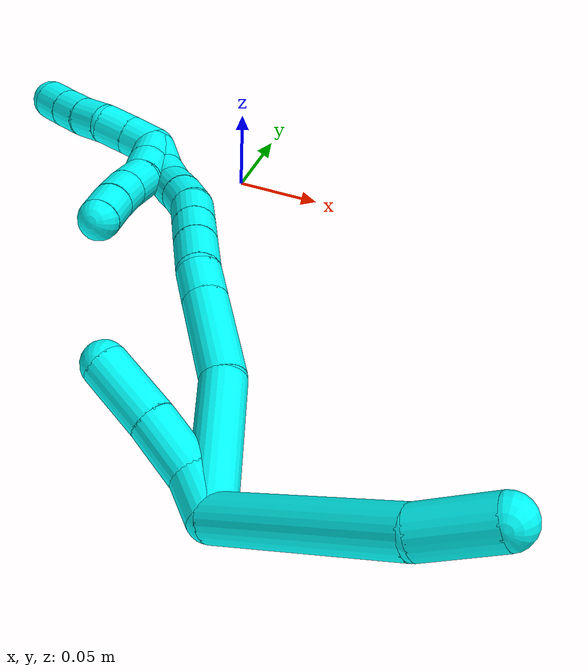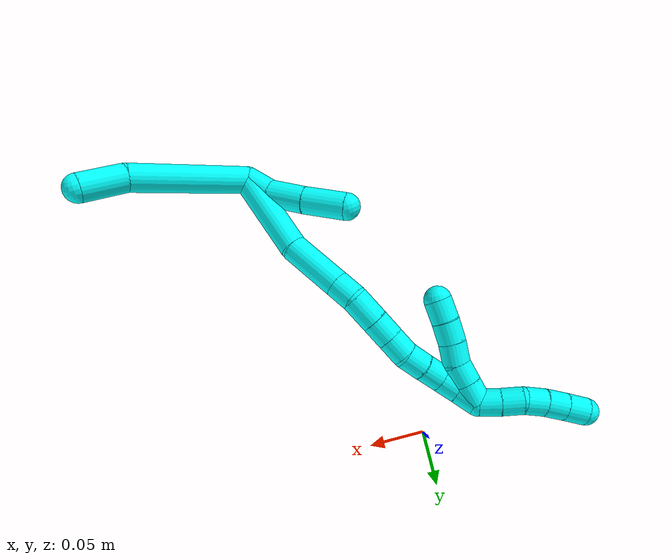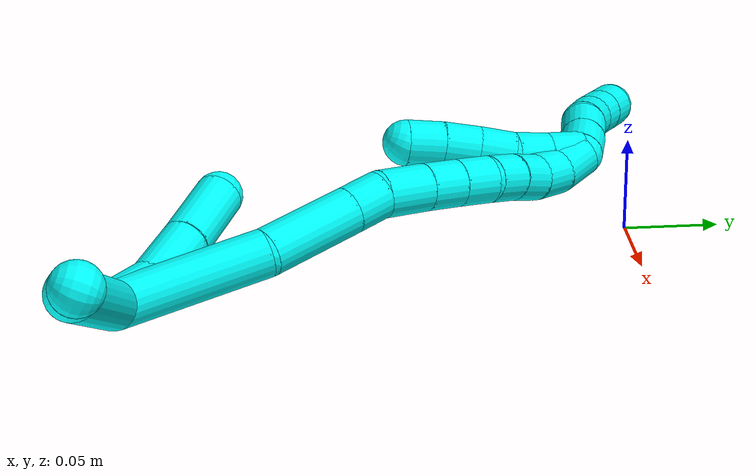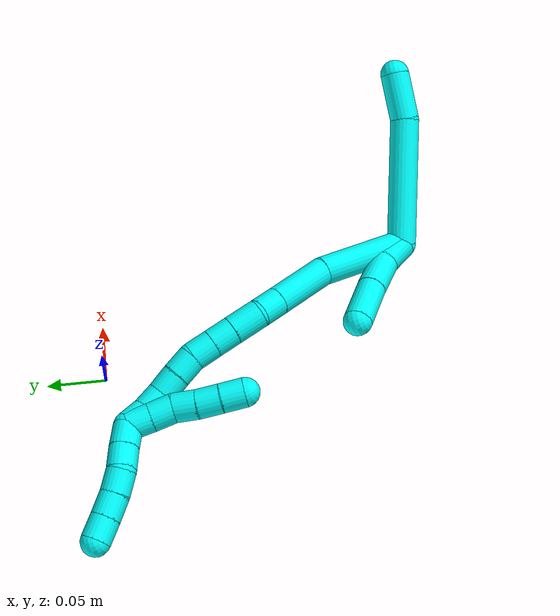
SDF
<sdf version="1.7">
 <world name="default">
  <model name="3">
   <static>0</static>
   <link name="3">
    <collision name="collision-cylinder-e_1_2_8">
     <pose>0.04837 0.017768 0.017767 -0.785415 1.0917 -0.492972</pose>
     <geometry><cylinder><radius>0.0125</radius><length>0.109014</length></cylinder></geometry>
     <surface>
      <friction><ode><mu>1.16</mu><mu2>1.16</mu2><slip1>0</slip1><slip2>0</slip2></ode></friction>
      <contact><ode><kp>1e+06</kp><kd>1</kd><max_vel>0</max_vel><min_depth>0.001</min_depth></ode></contact>
     </surface>
    </collision>
    <visual name="visual-cylinder-e_1_2_8">
     <pose>0.04837 0.017768 0.017767 -0.785415 1.0917 -0.492972</pose>
     <geometry><cylinder><radius>0.0125</radius><length>0.109014</length></cylinder></geometry>
     <material><ambient>0.003922 1 0.996078 1</ambient></material>
    </visual>
    <collision name="collision-cylinder-e_2_8_6">
     <pose>0.115172 0.044211 0.037759 -1.31972 1.11846 -0.90413</pose>
     <geometry><cylinder><radius>0.0125</radius><length>0.040986</length></cylinder></geometry>
     <surface>
      <friction><ode><mu>1.16</mu><mu2>1.16</mu2><slip1>0</slip1><slip2>0</slip2></ode></friction>
      <contact><ode><kp>1e+06</kp><kd>1</kd><max_vel>0</max_vel><min_depth>0.001</min_depth></ode></contact>
     </surface>
    </collision>
    <visual name="visual-cylinder-e_2_8_6">
     <pose>0.115172 0.044211 0.037759 -1.31972 1.11846 -0.90413</pose>
     <geometry><cylinder><radius>0.0125</radius><length>0.040986</length></cylinder></geometry>
     <material><ambient>0.003922 1 0.996078 1</ambient></material>
    </visual>
    <collision name="collision-cylinder-e_1_2_9">
     <pose>-0.008256 0.005606 -0.007774 -2.5168 -0.711059 1.70982</pose>
     <geometry><cylinder><radius>0.0125</radius><length>0.025301</length></cylinder></geometry>
     <surface>
      <friction><ode><mu>1.16</mu><mu2>1.16</mu2><slip1>0</slip1><slip2>0</slip2></ode></friction>
      <contact><ode><kp>1e+06</kp><kd>1</kd><max_vel>0</max_vel><min_depth>0.001</min_depth></ode></contact>
     </surface>
    </collision>
    <visual name="visual-cylinder-e_1_2_9">
     <pose>-0.008256 0.005606 -0.007774 -2.5168 -0.711059 1.70982</pose>
     <geometry><cylinder><radius>0.0125</radius><length>0.025301</length></cylinder></geometry>
     <material><ambient>0.003922 1 0.996078 1</ambient></material>
    </visual>
    <collision name="collision-cylinder-e_2_9_10">
     <pose>-0.030548 0.019531 -0.021478 -2.19017 -0.941652 1.55875</pose>
     <geometry><cylinder><radius>0.0125</radius><length>0.03472</length></cylinder></geometry>
     <surface>
      <friction><ode><mu>1.16</mu><mu2>1.16</mu2><slip1>0</slip1><slip2>0</slip2></ode></friction>
      <contact><ode><kp>1e+06</kp><kd>1</kd><max_vel>0</max_vel><min_depth>0.001</min_depth></ode></contact>
     </surface>
    </collision>
    <visual name="visual-cylinder-e_2_9_10">
     <pose>-0.030548 0.019531 -0.021478 -2.19017 -0.941652 1.55875</pose>
     <geometry><cylinder><radius>0.0125</radius><length>0.03472</length></cylinder></geometry>
     <material><ambient>0.003922 1 0.996078 1</ambient></material>
    </visual>
    <collision name="collision-cylinder-e_3_10_5">
     <pose>-0.061352 0.036792 -0.033608 -2.17694 -0.995134 1.60749</pose>
     <geometry><cylinder><radius>0.0125</radius><length>0.03998</length></cylinder></geometry>
     <surface>
      <friction><ode><mu>1.16</mu><mu2>1.16</mu2><slip1>0</slip1><slip2>0</slip2></ode></friction>
      <contact><ode><kp>1e+06</kp><kd>1</kd><max_vel>0</max_vel><min_depth>0.001</min_depth></ode></contact>
     </surface>
    </collision>
    <visual name="visual-cylinder-e_3_10_5">
     <pose>-0.061352 0.036792 -0.033608 -2.17694 -0.995134 1.60749</pose>
     <geometry><cylinder><radius>0.0125</radius><length>0.03998</length></cylinder></geometry>
     <material><ambient>0.003922 1 0.996078 1</ambient></material>
    </visual>
    <collision name="collision-cylinder-e_1_2_11">
     <pose>-0.011275 0.022174 -0.031072 -2.52178 -0.287197 0.848267</pose>
     <geometry><cylinder><radius>0.0125</radius><length>0.079606</length></cylinder></geometry>
     <surface>
      <friction><ode><mu>1.16</mu><mu2>1.16</mu2><slip1>0</slip1><slip2>0</slip2></ode></friction>
      <contact><ode><kp>1e+06</kp><kd>1</kd><max_vel>0</max_vel><min_depth>0.001</min_depth></ode></contact>
     </surface>
    </collision>
    <visual name="visual-cylinder-e_1_2_11">
     <pose>-0.011275 0.022174 -0.031072 -2.52178 -0.287197 0.848267</pose>
     <geometry><cylinder><radius>0.0125</radius><length>0.079606</length></cylinder></geometry>
     <material><ambient>0.003922 1 0.996078 1</ambient></material>
    </visual>
    <collision name="collision-cylinder-e_2_11_12">
     <pose>-0.036034 0.057958 -0.080031 -2.49115 -0.540383 1.37529</pose>
     <geometry><cylinder><radius>0.0125</radius><length>0.052422</length></cylinder></geometry>
     <surface>
      <friction><ode><mu>1.16</mu><mu2>1.16</mu2><slip1>0</slip1><slip2>0</slip2></ode></friction>
      <contact><ode><kp>1e+06</kp><kd>1</kd><max_vel>0</max_vel><min_depth>0.001</min_depth></ode></contact>
     </surface>
    </collision>
    <visual name="visual-cylinder-e_2_11_12">
     <pose>-0.036034 0.057958 -0.080031 -2.49115 -0.540383 1.37529</pose>
     <geometry><cylinder><radius>0.0125</radius><length>0.052422</length></cylinder></geometry>
     <material><ambient>0.003922 1 0.996078 1</ambient></material>
    </visual>
    <collision name="collision-cylinder-e_3_12_13">
     <pose>-0.054816 0.077042 -0.104946 -2.47986 -0.536448 1.34966</pose>
     <geometry><cylinder><radius>0.0125</radius><length>0.020728</length></cylinder></geometry>
     <surface>
      <friction><ode><mu>1.16</mu><mu2>1.16</mu2><slip1>0</slip1><slip2>0</slip2></ode></friction>
      <contact><ode><kp>1e+06</kp><kd>1</kd><max_vel>0</max_vel><min_depth>0.001</min_depth></ode></contact>
     </surface>
    </collision>
    <visual name="visual-cylinder-e_3_12_13">
     <pose>-0.054816 0.077042 -0.104946 -2.47986 -0.536448 1.34966</pose>
     <geometry><cylinder><radius>0.0125</radius><length>0.020728</length></cylinder></geometry>
     <material><ambient>0.003922 1 0.996078 1</ambient></material>
    </visual>
    <collision name="collision-cylinder-e_4_13_14">
     <pose>-0.065962 0.086897 -0.123339 -2.77367 -0.447737 1.7713</pose>
     <geometry><cylinder><radius>0.0125</radius><length>0.027023</length></cylinder></geometry>
     <surface>
      <friction><ode><mu>1.16</mu><mu2>1.16</mu2><slip1>0</slip1><slip2>0</slip2></ode></friction>
      <contact><ode><kp>1e+06</kp><kd>1</kd><max_vel>0</max_vel><min_depth>0.001</min_depth></ode></contact>
     </surface>
    </collision>
    <visual name="visual-cylinder-e_4_13_14">
     <pose>-0.065962 0.086897 -0.123339 -2.77367 -0.447737 1.7713</pose>
     <geometry><cylinder><radius>0.0125</radius><length>0.027023</length></cylinder></geometry>
     <material><ambient>0.003922 1 0.996078 1</ambient></material>
    </visual>
    <collision name="collision-cylinder-e_5_14_15">
     <pose>-0.076124 0.094326 -0.143299 -2.80076 -0.441677 1.8336</pose>
     <geometry><cylinder><radius>0.0125</radius><length>0.020177</length></cylinder></geometry>
     <surface>
      <friction><ode><mu>1.16</mu><mu2>1.16</mu2><slip1>0</slip1><slip2>0</slip2></ode></friction>
      <contact><ode><kp>1e+06</kp><kd>1</kd><max_vel>0</max_vel><min_depth>0.001</min_depth></ode></contact>
     </surface>
    </collision>
    <visual name="visual-cylinder-e_5_14_15">
     <pose>-0.076124 0.094326 -0.143299 -2.80076 -0.441677 1.8336</pose>
     <geometry><cylinder><radius>0.0125</radius><length>0.020177</length></cylinder></geometry>
     <material><ambient>0.003922 1 0.996078 1</ambient></material>
    </visual>
    <collision name="collision-cylinder-e_6_15_16">
     <pose>-0.084741 0.100284 -0.160457 -2.8141 -0.444263 1.87841</pose>
     <geometry><cylinder><radius>0.0125</radius><length>0.020031</length></cylinder></geometry>
     <surface>
      <friction><ode><mu>1.16</mu><mu2>1.16</mu2><slip1>0</slip1><slip2>0</slip2></ode></friction>
      <contact><ode><kp>1e+06</kp><kd>1</kd><max_vel>0</max_vel><min_depth>0.001</min_depth></ode></contact>
     </surface>
    </collision>
    <visual name="visual-cylinder-e_6_15_16">
     <pose>-0.084741 0.100284 -0.160457 -2.8141 -0.444263 1.87841</pose>
     <geometry><cylinder><radius>0.0125</radius><length>0.020031</length></cylinder></geometry>
     <material><ambient>0.003922 1 0.996078 1</ambient></material>
    </visual>
    <collision name="collision-cylinder-e_7_16_17">
     <pose>-0.095296 0.104541 -0.176711 -2.96802 -0.675021 2.65557</pose>
     <geometry><cylinder><radius>0.0125</radius><length>0.020004</length></cylinder></geometry>
     <surface>
      <friction><ode><mu>1.16</mu><mu2>1.16</mu2><slip1>0</slip1><slip2>0</slip2></ode></friction>
      <contact><ode><kp>1e+06</kp><kd>1</kd><max_vel>0</max_vel><min_depth>0.001</min_depth></ode></contact>
     </surface>
    </collision>
    <visual name="visual-cylinder-e_7_16_17">
     <pose>-0.095296 0.104541 -0.176711 -2.96802 -0.675021 2.65557</pose>
     <geometry><cylinder><radius>0.0125</radius><length>0.020004</length></cylinder></geometry>
     <material><ambient>0.003922 1 0.996078 1</ambient></material>
    </visual>
    <collision name="collision-cylinder-e_8_17_18">
     <pose>-0.107919 0.106466 -0.192087 -3.0668 -0.690883 2.9344</pose>
     <geometry><cylinder><radius>0.0125</radius><length>0.02</length></cylinder></geometry>
     <surface>
      <friction><ode><mu>1.16</mu><mu2>1.16</mu2><slip1>0</slip1><slip2>0</slip2></ode></friction>
      <contact><ode><kp>1e+06</kp><kd>1</kd><max_vel>0</max_vel><min_depth>0.001</min_depth></ode></contact>
     </surface>
    </collision>
    <visual name="visual-cylinder-e_8_17_18">
     <pose>-0.107919 0.106466 -0.192087 -3.0668 -0.690883 2.9344</pose>
     <geometry><cylinder><radius>0.0125</radius><length>0.02</length></cylinder></geometry>
     <material><ambient>0.003922 1 0.996078 1</ambient></material>
    </visual>
    <collision name="collision-cylinder-e_9_18_19">
     <pose>-0.120767 0.109474 -0.206997 -2.81683 -0.704237 2.30277</pose>
     <geometry><cylinder><radius>0.0125</radius><length>0.020005</length></cylinder></geometry>
     <surface>
      <friction><ode><mu>1.16</mu><mu2>1.16</mu2><slip1>0</slip1><slip2>0</slip2></ode></friction>
      <contact><ode><kp>1e+06</kp><kd>1</kd><max_vel>0</max_vel><min_depth>0.001</min_depth></ode></contact>
     </surface>
    </collision>
    <visual name="visual-cylinder-e_9_18_19">
     <pose>-0.120767 0.109474 -0.206997 -2.81683 -0.704237 2.30277</pose>
     <geometry><cylinder><radius>0.0125</radius><length>0.020005</length></cylinder></geometry>
     <material><ambient>0.003922 1 0.996078 1</ambient></material>
    </visual>
    <collision name="collision-cylinder-e_10_19_1">
     <pose>-0.133221 0.117381 -0.22008 -2.39011 -0.640663 1.39848</pose>
     <geometry><cylinder><radius>0.0125</radius><length>0.020004</length></cylinder></geometry>
     <surface>
      <friction><ode><mu>1.16</mu><mu2>1.16</mu2><slip1>0</slip1><slip2>0</slip2></ode></friction>
      <contact><ode><kp>1e+06</kp><kd>1</kd><max_vel>0</max_vel><min_depth>0.001</min_depth></ode></contact>
     </surface>
    </collision>
    <visual name="visual-cylinder-e_10_19_1">
     <pose>-0.133221 0.117381 -0.22008 -2.39011 -0.640663 1.39848</pose>
     <geometry><cylinder><radius>0.0125</radius><length>0.020004</length></cylinder></geometry>
     <material><ambient>0.003922 1 0.996078 1</ambient></material>
    </visual>
    <collision name="collision-cylinder-e_1_1_20">
     <pose>-0.148751 0.124932 -0.228054 -2.36529 -1.26995 2.12827</pose>
     <geometry><cylinder><radius>0.0125</radius><length>0.02</length></cylinder></geometry>
     <surface>
      <friction><ode><mu>1.16</mu><mu2>1.16</mu2><slip1>0</slip1><slip2>0</slip2></ode></friction>
      <contact><ode><kp>1e+06</kp><kd>1</kd><max_vel>0</max_vel><min_depth>0.001</min_depth></ode></contact>
     </surface>
    </collision>
    <visual name="visual-cylinder-e_1_1_20">
     <pose>-0.148751 0.124932 -0.228054 -2.36529 -1.26995 2.12827</pose>
     <geometry><cylinder><radius>0.0125</radius><length>0.02</length></cylinder></geometry>
     <material><ambient>0.003922 1 0.996078 1</ambient></material>
    </visual>
    <collision name="collision-cylinder-e_2_20_21">
     <pose>-0.16799 0.129033 -0.231596 -2.18495 -1.32035 1.96401</pose>
     <geometry><cylinder><radius>0.0125</radius><length>0.02</length></cylinder></geometry>
     <surface>
      <friction><ode><mu>1.16</mu><mu2>1.16</mu2><slip1>0</slip1><slip2>0</slip2></ode></friction>
      <contact><ode><kp>1e+06</kp><kd>1</kd><max_vel>0</max_vel><min_depth>0.001</min_depth></ode></contact>
     </surface>
    </collision>
    <visual name="visual-cylinder-e_2_20_21">
     <pose>-0.16799 0.129033 -0.231596 -2.18495 -1.32035 1.96401</pose>
     <geometry><cylinder><radius>0.0125</radius><length>0.02</length></cylinder></geometry>
     <material><ambient>0.003922 1 0.996078 1</ambient></material>
    </visual>
    <collision name="collision-cylinder-e_3_21_22">
     <pose>-0.186818 0.1313 -0.237074 -3.08204 -1.15308 3.05004</pose>
     <geometry><cylinder><radius>0.0125</radius><length>0.02</length></cylinder></geometry>
     <surface>
      <friction><ode><mu>1.16</mu><mu2>1.16</mu2><slip1>0</slip1><slip2>0</slip2></ode></friction>
      <contact><ode><kp>1e+06</kp><kd>1</kd><max_vel>0</max_vel><min_depth>0.001</min_depth></ode></contact>
     </surface>
    </collision>
    <visual name="visual-cylinder-e_3_21_22">
     <pose>-0.186818 0.1313 -0.237074 -3.08204 -1.15308 3.05004</pose>
     <geometry><cylinder><radius>0.0125</radius><length>0.02</length></cylinder></geometry>
     <material><ambient>0.003922 1 0.996078 1</ambient></material>
    </visual>
    <collision name="collision-cylinder-e_4_22_23">
     <pose>-0.204638 0.132413 -0.246012 -2.96521 -1.05116 2.83902</pose>
     <geometry><cylinder><radius>0.0125</radius><length>0.02</length></cylinder></geometry>
     <surface>
      <friction><ode><mu>1.16</mu><mu2>1.16</mu2><slip1>0</slip1><slip2>0</slip2></ode></friction>
      <contact><ode><kp>1e+06</kp><kd>1</kd><max_vel>0</max_vel><min_depth>0.001</min_depth></ode></contact>
     </surface>
    </collision>
    <visual name="visual-cylinder-e_4_22_23">
     <pose>-0.204638 0.132413 -0.246012 -2.96521 -1.05116 2.83902</pose>
     <geometry><cylinder><radius>0.0125</radius><length>0.02</length></cylinder></geometry>
     <material><ambient>0.003922 1 0.996078 1</ambient></material>
    </visual>
    <collision name="collision-cylinder-e_5_23_4">
     <pose>-0.221919 0.134398 -0.255879 -2.92145 -1.03548 2.75827</pose>
     <geometry><cylinder><radius>0.0125</radius><length>0.02</length></cylinder></geometry>
     <surface>
      <friction><ode><mu>1.16</mu><mu2>1.16</mu2><slip1>0</slip1><slip2>0</slip2></ode></friction>
      <contact><ode><kp>1e+06</kp><kd>1</kd><max_vel>0</max_vel><min_depth>0.001</min_depth></ode></contact>
     </surface>
    </collision>
    <visual name="visual-cylinder-e_5_23_4">
     <pose>-0.221919 0.134398 -0.255879 -2.92145 -1.03548 2.75827</pose>
     <geometry><cylinder><radius>0.0125</radius><length>0.02</length></cylinder></geometry>
     <material><ambient>0.003922 1 0.996078 1</ambient></material>
    </visual>
    <collision name="collision-cylinder-e_1_1_24">
     <pose>-0.137114 0.119401 -0.21679 0.361009 0.210122 0.038482</pose>
     <geometry><cylinder><radius>0.0125</radius><length>0.02</length></cylinder></geometry>
     <surface>
      <friction><ode><mu>1.16</mu><mu2>1.16</mu2><slip1>0</slip1><slip2>0</slip2></ode></friction>
      <contact><ode><kp>1e+06</kp><kd>1</kd><max_vel>0</max_vel><min_depth>0.001</min_depth></ode></contact>
     </surface>
    </collision>
    <visual name="visual-cylinder-e_1_1_24">
     <pose>-0.137114 0.119401 -0.21679 0.361009 0.210122 0.038482</pose>
     <geometry><cylinder><radius>0.0125</radius><length>0.02</length></cylinder></geometry>
     <material><ambient>0.003922 1 0.996078 1</ambient></material>
    </visual>
    <collision name="collision-cylinder-e_2_24_25">
     <pose>-0.132845 0.113054 -0.19832 0.300961 0.220123 0.033509</pose>
     <geometry><cylinder><radius>0.0125</radius><length>0.02</length></cylinder></geometry>
     <surface>
      <friction><ode><mu>1.16</mu><mu2>1.16</mu2><slip1>0</slip1><slip2>0</slip2></ode></friction>
      <contact><ode><kp>1e+06</kp><kd>1</kd><max_vel>0</max_vel><min_depth>0.001</min_depth></ode></contact>
     </surface>
    </collision>
    <visual name="visual-cylinder-e_2_24_25">
     <pose>-0.132845 0.113054 -0.19832 0.300961 0.220123 0.033509</pose>
     <geometry><cylinder><radius>0.0125</radius><length>0.02</length></cylinder></geometry>
     <material><ambient>0.003922 1 0.996078 1</ambient></material>
    </visual>
    <collision name="collision-cylinder-e_3_25_26">
     <pose>-0.131279 0.107843 -0.179292 0.234369 -0.06181 -0.007279</pose>
     <geometry><cylinder><radius>0.0125</radius><length>0.02</length></cylinder></geometry>
     <surface>
      <friction><ode><mu>1.16</mu><mu2>1.16</mu2><slip1>0</slip1><slip2>0</slip2></ode></friction>
      <contact><ode><kp>1e+06</kp><kd>1</kd><max_vel>0</max_vel><min_depth>0.001</min_depth></ode></contact>
     </surface>
    </collision>
    <visual name="visual-cylinder-e_3_25_26">
     <pose>-0.131279 0.107843 -0.179292 0.234369 -0.06181 -0.007279</pose>
     <geometry><cylinder><radius>0.0125</radius><length>0.02</length></cylinder></geometry>
     <material><ambient>0.003922 1 0.996078 1</ambient></material>
    </visual>
    <collision name="collision-cylinder-e_4_26_27">
     <pose>-0.131505 0.103149 -0.159878 0.24007 0.039242 0.004734</pose>
     <geometry><cylinder><radius>0.0125</radius><length>0.02</length></cylinder></geometry>
     <surface>
      <friction><ode><mu>1.16</mu><mu2>1.16</mu2><slip1>0</slip1><slip2>0</slip2></ode></friction>
      <contact><ode><kp>1e+06</kp><kd>1</kd><max_vel>0</max_vel><min_depth>0.001</min_depth></ode></contact>
     </surface>
    </collision>
    <visual name="visual-cylinder-e_4_26_27">
     <pose>-0.131505 0.103149 -0.159878 0.24007 0.039242 0.004734</pose>
     <geometry><cylinder><radius>0.0125</radius><length>0.02</length></cylinder></geometry>
     <material><ambient>0.003922 1 0.996078 1</ambient></material>
    </visual>
    <collision name="collision-cylinder-e_5_27_3">
     <pose>-0.130386 0.097737 -0.140672 0.309321 0.07271 0.011341</pose>
     <geometry><cylinder><radius>0.0125</radius><length>0.02</length></cylinder></geometry>
     <surface>
      <friction><ode><mu>1.16</mu><mu2>1.16</mu2><slip1>0</slip1><slip2>0</slip2></ode></friction>
      <contact><ode><kp>1e+06</kp><kd>1</kd><max_vel>0</max_vel><min_depth>0.001</min_depth></ode></contact>
     </surface>
    </collision>
    <visual name="visual-cylinder-e_5_27_3">
     <pose>-0.130386 0.097737 -0.140672 0.309321 0.07271 0.011341</pose>
     <geometry><cylinder><radius>0.0125</radius><length>0.02</length></cylinder></geometry>
     <material><ambient>0.003922 1 0.996078 1</ambient></material>
    </visual>
    <collision name="collision-sphere-3">
     <pose>-0.129659 0.094701 -0.131172 0 -0 0</pose>
     <geometry><sphere><radius>0.0125</radius></sphere></geometry>
     <surface>
      <friction><ode><mu>1.16</mu><mu2>1.16</mu2><slip1>0</slip1><slip2>0</slip2></ode></friction>
      <contact><ode><kp>1e+06</kp><kd>1</kd><max_vel>0</max_vel><min_depth>0.001</min_depth></ode></contact>
     </surface>
    </collision>
    <visual name="visual-sphere-3">
     <pose>-0.129659 0.094701 -0.131172 0 -0 0</pose>
     <geometry><sphere><radius>0.0125</radius></sphere></geometry>
     <material><ambient>0.003922 1 0.996078 1</ambient></material>
    </visual>
    <collision name="collision-sphere-27">
     <pose>-0.131112 0.100773 -0.150173 0 -0 0</pose>
     <geometry><sphere><radius>0.0125</radius></sphere></geometry>
     <surface>
      <friction><ode><mu>1.16</mu><mu2>1.16</mu2><slip1>0</slip1><slip2>0</slip2></ode></friction>
      <contact><ode><kp>1e+06</kp><kd>1</kd><max_vel>0</max_vel><min_depth>0.001</min_depth></ode></contact>
     </surface>
    </collision>
    <visual name="visual-sphere-27">
     <pose>-0.131112 0.100773 -0.150173 0 -0 0</pose>
     <geometry><sphere><radius>0.0125</radius></sphere></geometry>
     <material><ambient>0.003922 1 0.996078 1</ambient></material>
    </visual>
    <collision name="collision-sphere-26">
     <pose>-0.131897 0.105525 -0.169584 0 -0 0</pose>
     <geometry><sphere><radius>0.0125</radius></sphere></geometry>
     <surface>
      <friction><ode><mu>1.16</mu><mu2>1.16</mu2><slip1>0</slip1><slip2>0</slip2></ode></friction>
      <contact><ode><kp>1e+06</kp><kd>1</kd><max_vel>0</max_vel><min_depth>0.001</min_depth></ode></contact>
     </surface>
    </collision>
    <visual name="visual-sphere-26">
     <pose>-0.131897 0.105525 -0.169584 0 -0 0</pose>
     <geometry><sphere><radius>0.0125</radius></sphere></geometry>
     <material><ambient>0.003922 1 0.996078 1</ambient></material>
    </visual>
    <collision name="collision-sphere-25">
     <pose>-0.130661 0.110161 -0.189 0 -0 0</pose>
     <geometry><sphere><radius>0.0125</radius></sphere></geometry>
     <surface>
      <friction><ode><mu>1.16</mu><mu2>1.16</mu2><slip1>0</slip1><slip2>0</slip2></ode></friction>
      <contact><ode><kp>1e+06</kp><kd>1</kd><max_vel>0</max_vel><min_depth>0.001</min_depth></ode></contact>
     </surface>
    </collision>
    <visual name="visual-sphere-25">
     <pose>-0.130661 0.110161 -0.189 0 -0 0</pose>
     <geometry><sphere><radius>0.0125</radius></sphere></geometry>
     <material><ambient>0.003922 1 0.996078 1</ambient></material>
    </visual>
    <collision name="collision-sphere-24">
     <pose>-0.135028 0.115947 -0.20764 0 -0 0</pose>
     <geometry><sphere><radius>0.0125</radius></sphere></geometry>
     <surface>
      <friction><ode><mu>1.16</mu><mu2>1.16</mu2><slip1>0</slip1><slip2>0</slip2></ode></friction>
      <contact><ode><kp>1e+06</kp><kd>1</kd><max_vel>0</max_vel><min_depth>0.001</min_depth></ode></contact>
     </surface>
    </collision>
    <visual name="visual-sphere-24">
     <pose>-0.135028 0.115947 -0.20764 0 -0 0</pose>
     <geometry><sphere><radius>0.0125</radius></sphere></geometry>
     <material><ambient>0.003922 1 0.996078 1</ambient></material>
    </visual>
    <collision name="collision-sphere-4">
     <pose>-0.23052 0.135512 -0.260857 0 -0 0</pose>
     <geometry><sphere><radius>0.0125</radius></sphere></geometry>
     <surface>
      <friction><ode><mu>1.16</mu><mu2>1.16</mu2><slip1>0</slip1><slip2>0</slip2></ode></friction>
      <contact><ode><kp>1e+06</kp><kd>1</kd><max_vel>0</max_vel><min_depth>0.001</min_depth></ode></contact>
     </surface>
    </collision>
    <visual name="visual-sphere-4">
     <pose>-0.23052 0.135512 -0.260857 0 -0 0</pose>
     <geometry><sphere><radius>0.0125</radius></sphere></geometry>
     <material><ambient>0.003922 1 0.996078 1</ambient></material>
    </visual>
    <collision name="collision-sphere-23">
     <pose>-0.213318 0.133284 -0.250901 0 -0 0</pose>
     <geometry><sphere><radius>0.0125</radius></sphere></geometry>
     <surface>
      <friction><ode><mu>1.16</mu><mu2>1.16</mu2><slip1>0</slip1><slip2>0</slip2></ode></friction>
      <contact><ode><kp>1e+06</kp><kd>1</kd><max_vel>0</max_vel><min_depth>0.001</min_depth></ode></contact>
     </surface>
    </collision>
    <visual name="visual-sphere-23">
     <pose>-0.213318 0.133284 -0.250901 0 -0 0</pose>
     <geometry><sphere><radius>0.0125</radius></sphere></geometry>
     <material><ambient>0.003922 1 0.996078 1</ambient></material>
    </visual>
    <collision name="collision-sphere-22">
     <pose>-0.195958 0.131542 -0.241124 0 -0 0</pose>
     <geometry><sphere><radius>0.0125</radius></sphere></geometry>
     <surface>
      <friction><ode><mu>1.16</mu><mu2>1.16</mu2><slip1>0</slip1><slip2>0</slip2></ode></friction>
      <contact><ode><kp>1e+06</kp><kd>1</kd><max_vel>0</max_vel><min_depth>0.001</min_depth></ode></contact>
     </surface>
    </collision>
    <visual name="visual-sphere-22">
     <pose>-0.195958 0.131542 -0.241124 0 -0 0</pose>
     <geometry><sphere><radius>0.0125</radius></sphere></geometry>
     <material><ambient>0.003922 1 0.996078 1</ambient></material>
    </visual>
    <collision name="collision-sphere-21">
     <pose>-0.177678 0.131059 -0.233025 0 -0 0</pose>
     <geometry><sphere><radius>0.0125</radius></sphere></geometry>
     <surface>
      <friction><ode><mu>1.16</mu><mu2>1.16</mu2><slip1>0</slip1><slip2>0</slip2></ode></friction>
      <contact><ode><kp>1e+06</kp><kd>1</kd><max_vel>0</max_vel><min_depth>0.001</min_depth></ode></contact>
     </surface>
    </collision>
    <visual name="visual-sphere-21">
     <pose>-0.177678 0.131059 -0.233025 0 -0 0</pose>
     <geometry><sphere><radius>0.0125</radius></sphere></geometry>
     <material><ambient>0.003922 1 0.996078 1</ambient></material>
    </visual>
    <collision name="collision-sphere-20">
     <pose>-0.158302 0.127008 -0.230168 0 -0 0</pose>
     <geometry><sphere><radius>0.0125</radius></sphere></geometry>
     <surface>
      <friction><ode><mu>1.16</mu><mu2>1.16</mu2><slip1>0</slip1><slip2>0</slip2></ode></friction>
      <contact><ode><kp>1e+06</kp><kd>1</kd><max_vel>0</max_vel><min_depth>0.001</min_depth></ode></contact>
     </surface>
    </collision>
    <visual name="visual-sphere-20">
     <pose>-0.158302 0.127008 -0.230168 0 -0 0</pose>
     <geometry><sphere><radius>0.0125</radius></sphere></geometry>
     <material><ambient>0.003922 1 0.996078 1</ambient></material>
    </visual>
    <collision name="collision-sphere-5">
     <pose>-0.07812 0.045736 -0.039808 0 -0 0</pose>
     <geometry><sphere><radius>0.0125</radius></sphere></geometry>
     <surface>
      <friction><ode><mu>1.16</mu><mu2>1.16</mu2><slip1>0</slip1><slip2>0</slip2></ode></friction>
      <contact><ode><kp>1e+06</kp><kd>1</kd><max_vel>0</max_vel><min_depth>0.001</min_depth></ode></contact>
     </surface>
    </collision>
    <visual name="visual-sphere-5">
     <pose>-0.07812 0.045736 -0.039808 0 -0 0</pose>
     <geometry><sphere><radius>0.0125</radius></sphere></geometry>
     <material><ambient>0.003922 1 0.996078 1</ambient></material>
    </visual>
    <collision name="collision-sphere-10">
     <pose>-0.044584 0.027848 -0.027409 0 -0 0</pose>
     <geometry><sphere><radius>0.0125</radius></sphere></geometry>
     <surface>
      <friction><ode><mu>1.16</mu><mu2>1.16</mu2><slip1>0</slip1><slip2>0</slip2></ode></friction>
      <contact><ode><kp>1e+06</kp><kd>1</kd><max_vel>0</max_vel><min_depth>0.001</min_depth></ode></contact>
     </surface>
    </collision>
    <visual name="visual-sphere-10">
     <pose>-0.044584 0.027848 -0.027409 0 -0 0</pose>
     <geometry><sphere><radius>0.0125</radius></sphere></geometry>
     <material><ambient>0.003922 1 0.996078 1</ambient></material>
    </visual>
    <collision name="collision-sphere-6">
     <pose>0.133604 0.052887 0.039984 0 -0 0</pose>
     <geometry><sphere><radius>0.0125</radius></sphere></geometry>
     <surface>
      <friction><ode><mu>1.16</mu><mu2>1.16</mu2><slip1>0</slip1><slip2>0</slip2></ode></friction>
      <contact><ode><kp>1e+06</kp><kd>1</kd><max_vel>0</max_vel><min_depth>0.001</min_depth></ode></contact>
     </surface>
    </collision>
    <visual name="visual-sphere-6">
     <pose>0.133604 0.052887 0.039984 0 -0 0</pose>
     <geometry><sphere><radius>0.0125</radius></sphere></geometry>
     <material><ambient>0.003922 1 0.996078 1</ambient></material>
    </visual>
    <collision name="collision-sphere-9">
     <pose>-0.016512 0.011213 -0.015548 0 -0 0</pose>
     <geometry><sphere><radius>0.0125</radius></sphere></geometry>
     <surface>
      <friction><ode><mu>1.16</mu><mu2>1.16</mu2><slip1>0</slip1><slip2>0</slip2></ode></friction>
      <contact><ode><kp>1e+06</kp><kd>1</kd><max_vel>0</max_vel><min_depth>0.001</min_depth></ode></contact>
     </surface>
    </collision>
    <visual name="visual-sphere-9">
     <pose>-0.016512 0.011213 -0.015548 0 -0 0</pose>
     <geometry><sphere><radius>0.0125</radius></sphere></geometry>
     <material><ambient>0.003922 1 0.996078 1</ambient></material>
    </visual>
    <collision name="collision-sphere-2">
     <geometry><sphere><radius>0.0125</radius></sphere></geometry>
     <surface>
      <friction><ode><mu>1.16</mu><mu2>1.16</mu2><slip1>0</slip1><slip2>0</slip2></ode></friction>
      <contact><ode><kp>1e+06</kp><kd>1</kd><max_vel>0</max_vel><min_depth>0.001</min_depth></ode></contact>
     </surface>
    </collision>
    <visual name="visual-sphere-2">
     <geometry><sphere><radius>0.0125</radius></sphere></geometry>
     <material><ambient>0.003922 1 0.996078 1</ambient></material>
    </visual>
    <collision name="collision-sphere-19">
     <pose>-0.127243 0.111906 -0.214221 0 -0 0</pose>
     <geometry><sphere><radius>0.0125</radius></sphere></geometry>
     <surface>
      <friction><ode><mu>1.16</mu><mu2>1.16</mu2><slip1>0</slip1><slip2>0</slip2></ode></friction>
      <contact><ode><kp>1e+06</kp><kd>1</kd><max_vel>0</max_vel><min_depth>0.001</min_depth></ode></contact>
     </surface>
    </collision>
    <visual name="visual-sphere-19">
     <pose>-0.127243 0.111906 -0.214221 0 -0 0</pose>
     <geometry><sphere><radius>0.0125</radius></sphere></geometry>
     <material><ambient>0.003922 1 0.996078 1</ambient></material>
    </visual>
    <collision name="collision-sphere-8">
     <pose>0.09674 0.035535 0.035534 0 -0 0</pose>
     <geometry><sphere><radius>0.0125</radius></sphere></geometry>
     <surface>
      <friction><ode><mu>1.16</mu><mu2>1.16</mu2><slip1>0</slip1><slip2>0</slip2></ode></friction>
      <contact><ode><kp>1e+06</kp><kd>1</kd><max_vel>0</max_vel><min_depth>0.001</min_depth></ode></contact>
     </surface>
    </collision>
    <visual name="visual-sphere-8">
     <pose>0.09674 0.035535 0.035534 0 -0 0</pose>
     <geometry><sphere><radius>0.0125</radius></sphere></geometry>
     <material><ambient>0.003922 1 0.996078 1</ambient></material>
    </visual>
    <collision name="collision-sphere-11">
     <pose>-0.02255 0.044348 -0.062144 0 -0 0</pose>
     <geometry><sphere><radius>0.0125</radius></sphere></geometry>
     <surface>
      <friction><ode><mu>1.16</mu><mu2>1.16</mu2><slip1>0</slip1><slip2>0</slip2></ode></friction>
      <contact><ode><kp>1e+06</kp><kd>1</kd><max_vel>0</max_vel><min_depth>0.001</min_depth></ode></contact>
     </surface>
    </collision>
    <visual name="visual-sphere-11">
     <pose>-0.02255 0.044348 -0.062144 0 -0 0</pose>
     <geometry><sphere><radius>0.0125</radius></sphere></geometry>
     <material><ambient>0.003922 1 0.996078 1</ambient></material>
    </visual>
    <collision name="collision-sphere-12">
     <pose>-0.049519 0.071568 -0.097918 0 -0 0</pose>
     <geometry><sphere><radius>0.0125</radius></sphere></geometry>
     <surface>
      <friction><ode><mu>1.16</mu><mu2>1.16</mu2><slip1>0</slip1><slip2>0</slip2></ode></friction>
      <contact><ode><kp>1e+06</kp><kd>1</kd><max_vel>0</max_vel><min_depth>0.001</min_depth></ode></contact>
     </surface>
    </collision>
    <visual name="visual-sphere-12">
     <pose>-0.049519 0.071568 -0.097918 0 -0 0</pose>
     <geometry><sphere><radius>0.0125</radius></sphere></geometry>
     <material><ambient>0.003922 1 0.996078 1</ambient></material>
    </visual>
    <collision name="collision-sphere-13">
     <pose>-0.060113 0.082516 -0.111974 0 -0 0</pose>
     <geometry><sphere><radius>0.0125</radius></sphere></geometry>
     <surface>
      <friction><ode><mu>1.16</mu><mu2>1.16</mu2><slip1>0</slip1><slip2>0</slip2></ode></friction>
      <contact><ode><kp>1e+06</kp><kd>1</kd><max_vel>0</max_vel><min_depth>0.001</min_depth></ode></contact>
     </surface>
    </collision>
    <visual name="visual-sphere-13">
     <pose>-0.060113 0.082516 -0.111974 0 -0 0</pose>
     <geometry><sphere><radius>0.0125</radius></sphere></geometry>
     <material><ambient>0.003922 1 0.996078 1</ambient></material>
    </visual>
    <collision name="collision-sphere-14">
     <pose>-0.071812 0.091278 -0.134704 0 -0 0</pose>
     <geometry><sphere><radius>0.0125</radius></sphere></geometry>
     <surface>
      <friction><ode><mu>1.16</mu><mu2>1.16</mu2><slip1>0</slip1><slip2>0</slip2></ode></friction>
      <contact><ode><kp>1e+06</kp><kd>1</kd><max_vel>0</max_vel><min_depth>0.001</min_depth></ode></contact>
     </surface>
    </collision>
    <visual name="visual-sphere-14">
     <pose>-0.071812 0.091278 -0.134704 0 -0 0</pose>
     <geometry><sphere><radius>0.0125</radius></sphere></geometry>
     <material><ambient>0.003922 1 0.996078 1</ambient></material>
    </visual>
    <collision name="collision-sphere-15">
     <pose>-0.080437 0.097375 -0.151895 0 -0 0</pose>
     <geometry><sphere><radius>0.0125</radius></sphere></geometry>
     <surface>
      <friction><ode><mu>1.16</mu><mu2>1.16</mu2><slip1>0</slip1><slip2>0</slip2></ode></friction>
      <contact><ode><kp>1e+06</kp><kd>1</kd><max_vel>0</max_vel><min_depth>0.001</min_depth></ode></contact>
     </surface>
    </collision>
    <visual name="visual-sphere-15">
     <pose>-0.080437 0.097375 -0.151895 0 -0 0</pose>
     <geometry><sphere><radius>0.0125</radius></sphere></geometry>
     <material><ambient>0.003922 1 0.996078 1</ambient></material>
    </visual>
    <collision name="collision-sphere-16">
     <pose>-0.089046 0.103193 -0.16902 0 -0 0</pose>
     <geometry><sphere><radius>0.0125</radius></sphere></geometry>
     <surface>
      <friction><ode><mu>1.16</mu><mu2>1.16</mu2><slip1>0</slip1><slip2>0</slip2></ode></friction>
      <contact><ode><kp>1e+06</kp><kd>1</kd><max_vel>0</max_vel><min_depth>0.001</min_depth></ode></contact>
     </surface>
    </collision>
    <visual name="visual-sphere-16">
     <pose>-0.089046 0.103193 -0.16902 0 -0 0</pose>
     <geometry><sphere><radius>0.0125</radius></sphere></geometry>
     <material><ambient>0.003922 1 0.996078 1</ambient></material>
    </visual>
    <collision name="collision-sphere-17">
     <pose>-0.101546 0.10589 -0.184402 0 -0 0</pose>
     <geometry><sphere><radius>0.0125</radius></sphere></geometry>
     <surface>
      <friction><ode><mu>1.16</mu><mu2>1.16</mu2><slip1>0</slip1><slip2>0</slip2></ode></friction>
      <contact><ode><kp>1e+06</kp><kd>1</kd><max_vel>0</max_vel><min_depth>0.001</min_depth></ode></contact>
     </surface>
    </collision>
    <visual name="visual-sphere-17">
     <pose>-0.101546 0.10589 -0.184402 0 -0 0</pose>
     <geometry><sphere><radius>0.0125</radius></sphere></geometry>
     <material><ambient>0.003922 1 0.996078 1</ambient></material>
    </visual>
    <collision name="collision-sphere-18">
     <pose>-0.114291 0.107042 -0.199773 0 -0 0</pose>
     <geometry><sphere><radius>0.0125</radius></sphere></geometry>
     <surface>
      <friction><ode><mu>1.16</mu><mu2>1.16</mu2><slip1>0</slip1><slip2>0</slip2></ode></friction>
      <contact><ode><kp>1e+06</kp><kd>1</kd><max_vel>0</max_vel><min_depth>0.001</min_depth></ode></contact>
     </surface>
    </collision>
    <visual name="visual-sphere-18">
     <pose>-0.114291 0.107042 -0.199773 0 -0 0</pose>
     <geometry><sphere><radius>0.0125</radius></sphere></geometry>
     <material><ambient>0.003922 1 0.996078 1</ambient></material>
    </visual>
    <collision name="collision-sphere-1">
     <pose>-0.1392 0.122856 -0.22594 0 -0 0</pose>
     <geometry><sphere><radius>0.0125</radius></sphere></geometry>
     <surface>
      <friction><ode><mu>1.16</mu><mu2>1.16</mu2><slip1>0</slip1><slip2>0</slip2></ode></friction>
      <contact><ode><kp>1e+06</kp><kd>1</kd><max_vel>0</max_vel><min_depth>0.001</min_depth></ode></contact>
     </surface>
    </collision>
    <visual name="visual-sphere-1">
     <pose>-0.1392 0.122856 -0.22594 0 -0 0</pose>
     <geometry><sphere><radius>0.0125</radius></sphere></geometry>
     <material><ambient>0.003922 1 0.996078 1</ambient></material>
    </visual>
    <inertial>
     <pose>-0.058237 0.068432 -0.099834 0 -0 0</pose>
     <mass>0.75</mass>
     <inertia>
      <ixx>0.000102</ixx>
      <ixy>0</ixy>
      <ixz>0</ixz>
      <iyy>0.000175</iyy>
      <iyz>0</iyz>
      <izz>-0.000157</izz>
     </inertia>
    </inertial>
   </link>
   <pose>0.097997 -0.266532 0.012296 1.13287 -0.037675 0.042814</pose>
  </model>
 </world>
</sdf>
